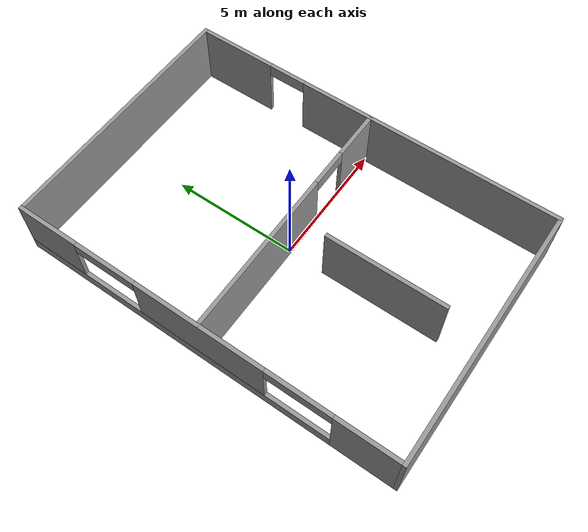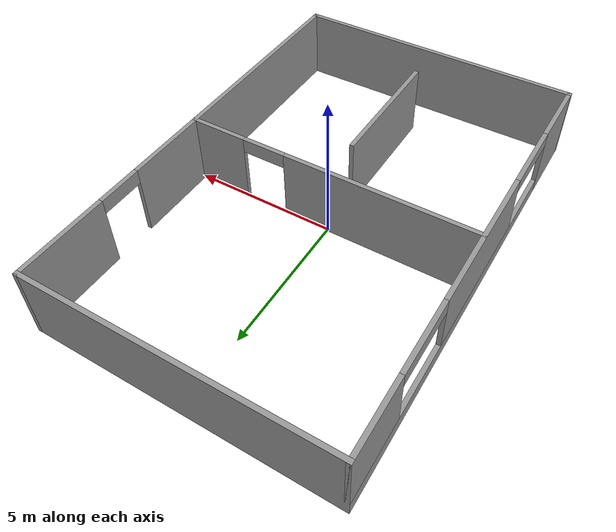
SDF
<?xml version='1.0'?>
<sdf version='1.6'>
  <model name='test_layout'>
    <pose frame=''>0 0 0 0 -0 0</pose>
    <link name='Wall_0'>
      <pose frame=''>-5 0 0 0 -0 1.5708</pose>
      <visual name='Wall_0_Visual_0'>
        <pose frame=''>-6.32131 0 1.25 0 -0 0</pose>
        <geometry>
          <box>
            <size>2.50738 0.15 2.5</size>
          </box>
        </geometry>
        <material>
          <script>
            <uri>file://media/materials/scripts/gazebo.material</uri>
            <name>Gazebo/Grey</name>
          </script>
          <ambient>1 1 1 1</ambient>
        </material>
        <meta>
          <layer>0</layer>
        </meta>
      </visual>
      <collision name='Wall_0_Collision_0'>
        <geometry>
          <box>
            <size>2.50738 0.15 2.5</size>
          </box>
        </geometry>
        <pose frame=''>-6.32131 0 1.25 0 -0 0</pose>
      </collision>
      <visual name='Wall_0_Visual_1'>
        <pose frame=''>1.25369 0 0.25 0 -0 0</pose>
        <geometry>
          <box>
            <size>12.6426 0.15 0.5</size>
          </box>
        </geometry>
        <material>
          <script>
            <uri>file://media/materials/scripts/gazebo.material</uri>
            <name>Gazebo/Grey</name>
          </script>
          <ambient>1 1 1 1</ambient>
        </material>
        <meta>
          <layer>0</layer>
        </meta>
      </visual>
      <collision name='Wall_0_Collision_1'>
        <geometry>
          <box>
            <size>12.6426 0.15 0.5</size>
          </box>
        </geometry>
        <pose frame=''>1.25369 0 0.25 0 -0 0</pose>
      </collision>
      <visual name='Wall_0_Visual_2'>
        <pose frame=''>-0.000358 0 1.5 0 -0 0</pose>
        <geometry>
          <box>
            <size>5.13452 0.15 2</size>
          </box>
        </geometry>
        <material>
          <script>
            <uri>file://media/materials/scripts/gazebo.material</uri>
            <name>Gazebo/Grey</name>
          </script>
          <ambient>1 1 1 1</ambient>
        </material>
        <meta>
          <layer>0</layer>
        </meta>
      </visual>
      <collision name='Wall_0_Collision_2'>
        <geometry>
          <box>
            <size>5.13452 0.15 2</size>
          </box>
        </geometry>
        <pose frame=''>-0.000358 0 1.5 0 -0 0</pose>
      </collision>
      <visual name='Wall_0_Visual_3'>
        <pose frame=''>6.32095 0 1.5 0 -0 0</pose>
        <geometry>
          <box>
            <size>2.5081 0.15 2</size>
          </box>
        </geometry>
        <material>
          <script>
            <uri>file://media/materials/scripts/gazebo.material</uri>
            <name>Gazebo/Grey</name>
          </script>
          <ambient>1 1 1 1</ambient>
        </material>
        <meta>
          <layer>0</layer>
        </meta>
      </visual>
      <collision name='Wall_0_Collision_3'>
        <geometry>
          <box>
            <size>2.5081 0.15 2</size>
          </box>
        </geometry>
        <pose frame=''>6.32095 0 1.5 0 -0 0</pose>
      </collision>
      <visual name='Wall_0_Visual_4'>
        <pose frame=''>-3.81762 0 2.25 0 -0 0</pose>
        <geometry>
          <box>
            <size>2.5 0.15 0.5</size>
          </box>
        </geometry>
        <material>
          <script>
            <uri>file://media/materials/scripts/gazebo.material</uri>
            <name>Gazebo/Grey</name>
          </script>
          <ambient>1 1 1 1</ambient>
        </material>
        <meta>
          <layer>0</layer>
        </meta>
      </visual>
      <collision name='Wall_0_Collision_4'>
        <geometry>
          <box>
            <size>2.5 0.15 0.5</size>
          </box>
        </geometry>
        <pose frame=''>-3.81762 0 2.25 0 -0 0</pose>
      </collision>
      <visual name='Wall_0_Visual_5'>
        <pose frame=''>3.8169 0 2.25 0 -0 0</pose>
        <geometry>
          <box>
            <size>2.5 0.15 0.5</size>
          </box>
        </geometry>
        <material>
          <script>
            <uri>file://media/materials/scripts/gazebo.material</uri>
            <name>Gazebo/Grey</name>
          </script>
          <ambient>1 1 1 1</ambient>
        </material>
        <meta>
          <layer>0</layer>
        </meta>
      </visual>
      <collision name='Wall_0_Collision_5'>
        <geometry>
          <box>
            <size>2.5 0.15 0.5</size>
          </box>
        </geometry>
        <pose frame=''>3.8169 0 2.25 0 -0 0</pose>
      </collision>
    </link>
    <link name='Wall_11'>
      <collision name='Wall_11_Collision'>
        <geometry>
          <box>
            <size>4.65 0.15 2.5</size>
          </box>
        </geometry>
        <pose frame=''>0 0 1.25 0 -0 0</pose>
      </collision>
      <visual name='Wall_11_Visual'>
        <pose frame=''>0 0 1.25 0 -0 0</pose>
        <geometry>
          <box>
            <size>4.65 0.15 2.5</size>
          </box>
        </geometry>
        <material>
          <script>
            <uri>file://media/materials/scripts/gazebo.material</uri>
            <name>Gazebo/Grey</name>
          </script>
          <ambient>1 1 1 1</ambient>
        </material>
        <meta>
          <layer>0</layer>
        </meta>
      </visual>
      <pose frame=''>0 -3.75 0 0 -0 1.5708</pose>
    </link>
    <link name='Wall_2'>
      <pose frame=''>5 0 0 0 -0 1.5708</pose>
      <visual name='Wall_2_Visual_0'>
        <pose frame=''>-2.35025 0 1.25 0 -0 0</pose>
        <geometry>
          <box>
            <size>10.4495 0.15 2.5</size>
          </box>
        </geometry>
        <material>
          <script>
            <uri>file://media/materials/scripts/gazebo.material</uri>
            <name>Gazebo/Grey</name>
          </script>
          <ambient>1 1 1 1</ambient>
        </material>
        <meta>
          <layer>0</layer>
        </meta>
      </visual>
      <collision name='Wall_2_Collision_0'>
        <geometry>
          <box>
            <size>10.4495 0.15 2.5</size>
          </box>
        </geometry>
        <pose frame=''>-2.35025 0 1.25 0 -0 0</pose>
      </collision>
      <visual name='Wall_2_Visual_1'>
        <pose frame=''>5.97476 0 1.25 0 -0 0</pose>
        <geometry>
          <box>
            <size>3.20049 0.15 2.5</size>
          </box>
        </geometry>
        <material>
          <script>
            <uri>file://media/materials/scripts/gazebo.material</uri>
            <name>Gazebo/Grey</name>
          </script>
          <ambient>1 1 1 1</ambient>
        </material>
        <meta>
          <layer>0</layer>
        </meta>
      </visual>
      <collision name='Wall_2_Collision_1'>
        <geometry>
          <box>
            <size>3.20049 0.15 2.5</size>
          </box>
        </geometry>
        <pose frame=''>5.97476 0 1.25 0 -0 0</pose>
      </collision>
      <visual name='Wall_2_Visual_2'>
        <pose frame=''>3.62451 0 2.25 0 -0 0</pose>
        <geometry>
          <box>
            <size>1.5 0.15 0.5</size>
          </box>
        </geometry>
        <material>
          <script>
            <uri>file://media/materials/scripts/gazebo.material</uri>
            <name>Gazebo/Grey</name>
          </script>
          <ambient>1 1 1 1</ambient>
        </material>
        <meta>
          <layer>0</layer>
        </meta>
      </visual>
      <collision name='Wall_2_Collision_2'>
        <geometry>
          <box>
            <size>1.5 0.15 0.5</size>
          </box>
        </geometry>
        <pose frame=''>3.62451 0 2.25 0 -0 0</pose>
      </collision>
    </link>
    <link name='Wall_4'>
      <collision name='Wall_4_Collision'>
        <geometry>
          <box>
            <size>10.15 0.15 2.5</size>
          </box>
        </geometry>
        <pose frame=''>0 0 1.25 0 -0 0</pose>
      </collision>
      <visual name='Wall_4_Visual'>
        <pose frame=''>0 0 1.25 0 -0 0</pose>
        <geometry>
          <box>
            <size>10.15 0.15 2.5</size>
          </box>
        </geometry>
        <material>
          <script>
            <uri>file://media/materials/scripts/gazebo.material</uri>
            <name>Gazebo/Grey</name>
          </script>
          <ambient>1 1 1 1</ambient>
        </material>
        <meta>
          <layer>0</layer>
        </meta>
      </visual>
      <pose frame=''>0 -7.5 0 0 -0 0</pose>
    </link>
    <link name='Wall_7'>
      <collision name='Wall_7_Collision'>
        <geometry>
          <box>
            <size>10.15 0.15 2.5</size>
          </box>
        </geometry>
        <pose frame=''>0 0 1.25 0 -0 0</pose>
      </collision>
      <visual name='Wall_7_Visual'>
        <pose frame=''>0 0 1.25 0 -0 0</pose>
        <geometry>
          <box>
            <size>10.15 0.15 2.5</size>
          </box>
        </geometry>
        <material>
          <script>
            <uri>file://media/materials/scripts/gazebo.material</uri>
            <name>Gazebo/Grey</name>
          </script>
          <ambient>1 1 1 1</ambient>
        </material>
        <meta>
          <layer>0</layer>
        </meta>
      </visual>
      <pose frame=''>0 7.5 0 0 -0 0</pose>
    </link>
    <link name='Wall_9'>
      <pose frame=''>0 0 0 0 -0 0</pose>
      <visual name='Wall_9_Visual_0'>
        <pose frame=''>-1.75515 0 1.25 0 -0 0</pose>
        <geometry>
          <box>
            <size>6.63969 0.15 2.5</size>
          </box>
        </geometry>
        <material>
          <script>
            <uri>file://media/materials/scripts/gazebo.material</uri>
            <name>Gazebo/Grey</name>
          </script>
          <ambient>1 1 1 1</ambient>
        </material>
        <meta>
          <layer>0</layer>
        </meta>
      </visual>
      <collision name='Wall_9_Collision_0'>
        <geometry>
          <box>
            <size>6.63969 0.15 2.5</size>
          </box>
        </geometry>
        <pose frame=''>-1.75515 0 1.25 0 -0 0</pose>
      </collision>
      <visual name='Wall_9_Visual_1'>
        <pose frame=''>4.06985 0 1.25 0 -0 0</pose>
        <geometry>
          <box>
            <size>2.01031 0.15 2.5</size>
          </box>
        </geometry>
        <material>
          <script>
            <uri>file://media/materials/scripts/gazebo.material</uri>
            <name>Gazebo/Grey</name>
          </script>
          <ambient>1 1 1 1</ambient>
        </material>
        <meta>
          <layer>0</layer>
        </meta>
      </visual>
      <collision name='Wall_9_Collision_1'>
        <geometry>
          <box>
            <size>2.01031 0.15 2.5</size>
          </box>
        </geometry>
        <pose frame=''>4.06985 0 1.25 0 -0 0</pose>
      </collision>
      <visual name='Wall_9_Visual_2'>
        <pose frame=''>2.31469 0 2.25 0 -0 0</pose>
        <geometry>
          <box>
            <size>1.5 0.15 0.5</size>
          </box>
        </geometry>
        <material>
          <script>
            <uri>file://media/materials/scripts/gazebo.material</uri>
            <name>Gazebo/Grey</name>
          </script>
          <ambient>1 1 1 1</ambient>
        </material>
        <meta>
          <layer>0</layer>
        </meta>
      </visual>
      <collision name='Wall_9_Collision_2'>
        <geometry>
          <box>
            <size>1.5 0.15 0.5</size>
          </box>
        </geometry>
        <pose frame=''>2.31469 0 2.25 0 -0 0</pose>
      </collision>
    </link>
    <static>1</static>
  </model>
</sdf>
